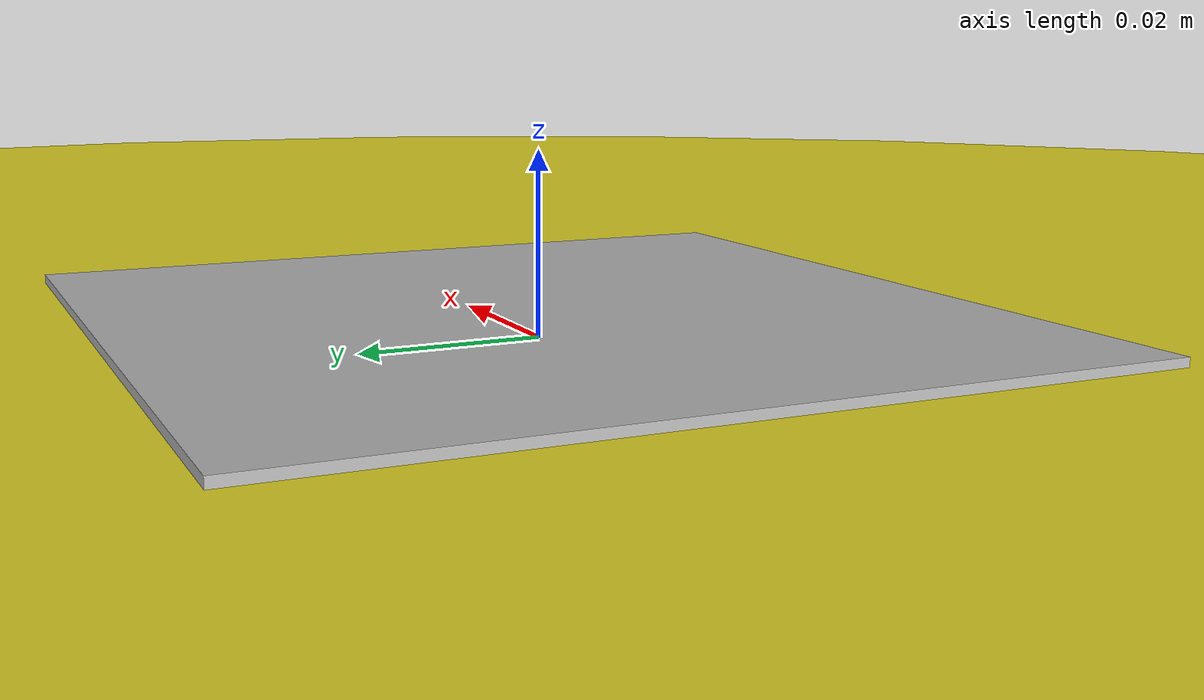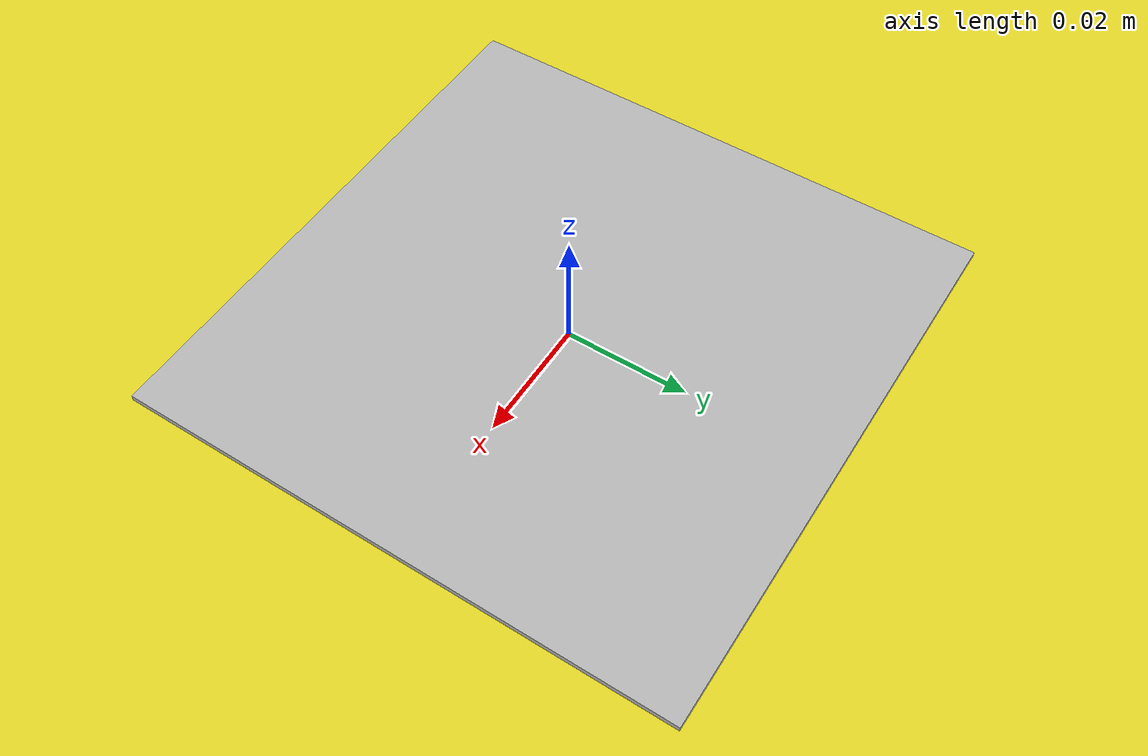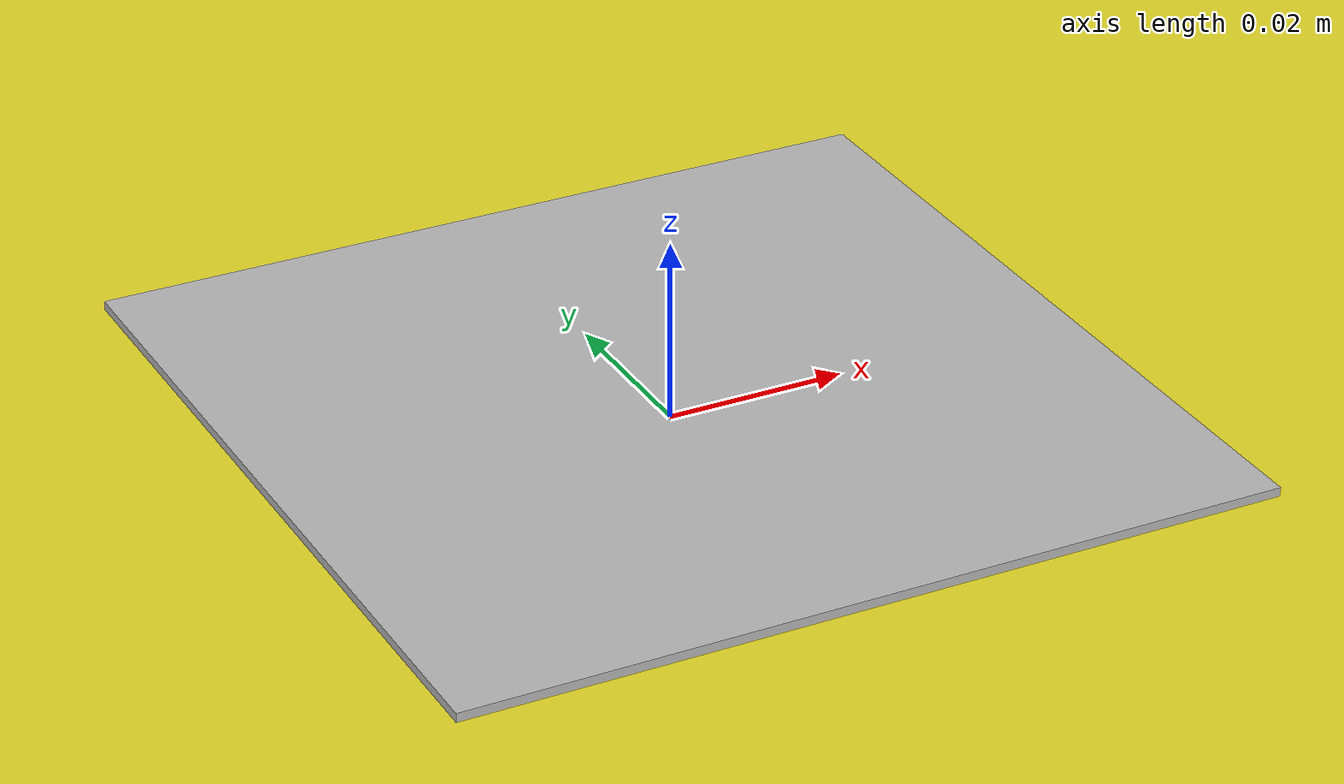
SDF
<?xml version='1.0'?>
<sdf version='1.5'>
  <model name='landing_pad'>
    <link name='landing_pad_link'>
      <pose frame=''>0 0 0 0 -0 0</pose>
      <gravity>1</gravity>
      <self_collide>0</self_collide>
      <kinematic>0</kinematic>
      <visual name='main_circle'>
        <pose frame=''>0 0 0 0 -0 0</pose>
        <geometry>
          <cylinder>
            <radius>0.255</radius>
            <length>0.004</length>
          </cylinder>
        </geometry>
        <material>
          <lighting>1</lighting>
          <script>
            <uri>file://media/materials/scripts/gazebo.material</uri>
            <name>Gazebo/Yellow</name>
          </script>
          <ambient>1 1 0 1</ambient>
          <diffuse>1 1 0 1</diffuse>
          <specular>0.1 0.1 0.1 1.0</specular>
          <emissive>0 0 0 0</emissive>
          <shader type='vertex'>
            <normal_map>__default__</normal_map>
          </shader>
        </material>
        <cast_shadows>1</cast_shadows>
        <transparency>0</transparency>
      </visual>
	<visual name='visual'>
	    <pose frame=''>0 0 0.0025 0 0 1.57</pose>
		<geometry>
		<box>
		<size>0.09 0.09 0.001</size>
		</box>
		</geometry>
		<material>
		<script>
		<uri>model://landing_pad/materials/scripts</uri>
		<uri>model://landing_pad/materials/textures</uri>
		<name>at0/Diffuse</name>
		</script>
		</material>
	</visual>
      <!--Apparently theres a bug with polyline and GTS with Gazebo6?
       ---The GTS library is found at compile time... but still no-->
      <collision name='collision'>
        <laser_retro>0</laser_retro>
        <max_contacts>10</max_contacts>
        <pose frame=''>0 0 0 0 -0 0</pose>
        <geometry>
          <cylinder>
            <radius>0.255</radius>
            <length>0.004</length>
          </cylinder>
        </geometry>
        <surface>
          <friction>
            <ode>
              <mu>1</mu>
              <mu2>1</mu2>
              <fdir1>0 0 0</fdir1>
              <slip1>0</slip1>
              <slip2>0</slip2>
            </ode>
          </friction>
        </surface>
      </collision>
    </link>
    <static>1</static>
    <allow_auto_disable>1</allow_auto_disable>
  </model>
</sdf>
